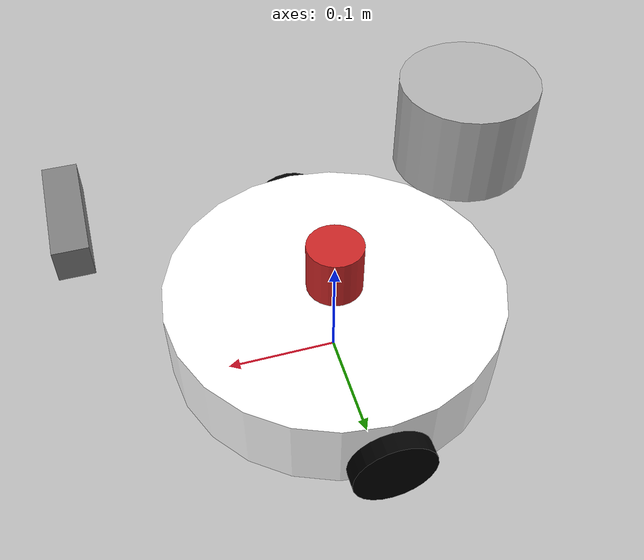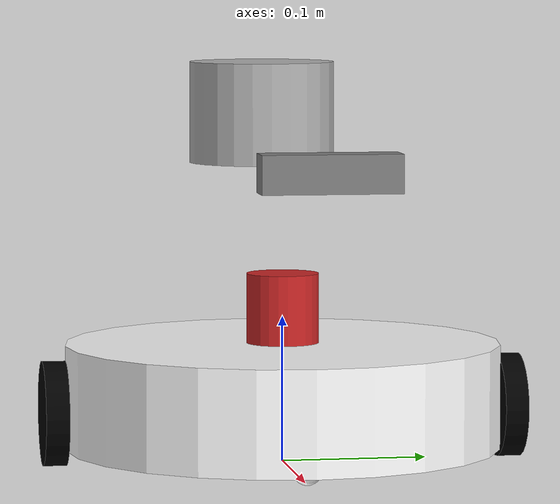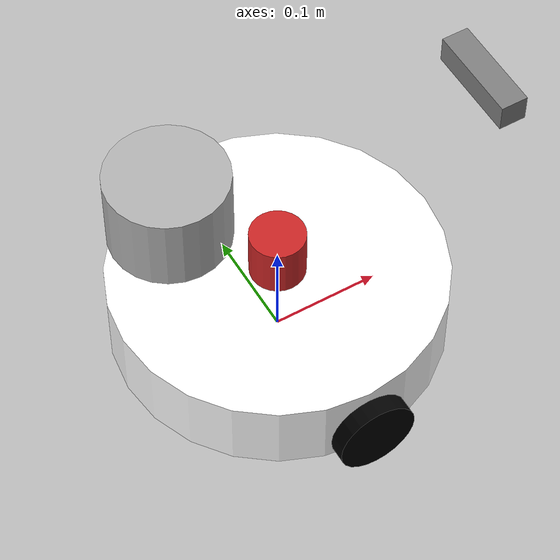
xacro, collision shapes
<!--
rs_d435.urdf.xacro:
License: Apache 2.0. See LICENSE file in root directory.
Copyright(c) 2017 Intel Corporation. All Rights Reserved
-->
<?xml version="1.0"?>
<robot xmlns:xacro="http://www.ros.org/wiki/xacro" name="example" >

    <!-- mobile base -->
    <xacro:include filename="$(find robot_simulator_template)/model/mobile_base/diff.xacro" />

    <!-- 2D LiDAR -->
    <xacro:include filename="$(find robot_simulator_template)/model/lidar/hokuyo.xacro" />
    <xacro:hokuyo parent="base_link" num="1" xyz="0.0 0 0.1" rpy="0 0 0" />

    <!-- 3D LiDAR -->
    <xacro:include filename="$(find robot_simulator_template)/model/lidar/velodyne.xacro" />
    <xacro:velodyne name="velodyne" parent="base_link" xyz="-0.1 0 0.2" rpy="0.0 0.0 0.0 " topic="/velodyne_points" hz="10" samples="440" collision_range="0.1" min_range="0.3" max_range="20.0" noise="0.008"/>

    <!-- imu -->
    <xacro:include filename="$(find robot_simulator_template)/model/imu/imu.xacro" />
    <xacro:imu_macro prefix="imu" parent="base_link" xyz="0.1 0 0.1" rpy="0.0 0.0 0.0" />

    <!-- camera -->
    <xacro:include filename="$(find robot_simulator_template)/model/camera/rs_d435.urdf.xacro" />
    <xacro:sensor_d435 parent="base_link" name="camera" topics_ns="camera">
      <origin xyz="0.2 0.0 0.2" rpy="0 0 0"/>
    </xacro:sensor_d435>

</robot>

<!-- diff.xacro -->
<robot name="diff">

    <link name="base_link"/>

    <link name="body_link">
      <visual>
        <geometry>
          <cylinder radius="0.15" length="0.072"/>
        </geometry>
        <origin xyz="0 0 0" rpy="0 0 0"/>
        <material name="white">
          <color rgba="1.0 1.0 1.0 1.0"/>
        </material>
      </visual>
      <collision>
        <geometry>
          <cylinder radius="0.15" length="0.072"/>
        </geometry>
        <origin xyz="0 0 0" rpy="0 0 0"/>
      </collision>
      <inertial>
          <origin xyz="0 0 0" rpy="0 0 0" />
          <mass value="3.0" />
          <inertia ixx="0.018171"
              ixy="0"  ixz="0"
              iyx="0"  iyy="0.018171"
              iyz="0"
              izx="0"  izy="0"  izz="0.03375" />
      </inertial>
    </link>

    <gazebo reference="body_link">
      <material>Gazebo/White</material>
    </gazebo>

    <link name="ball_link_front">
      <visual>
        <geometry>
          <sphere radius="0.01"/>
        </geometry>
        <origin xyz="0 0 0" rpy="0 0 0"/>
        <material name="white">
          <color rgba="1.0 1.0 1.0 1.0"/>
        </material>
      </visual>
      <collision>
        <geometry>
          <sphere radius="0.01"/>
        </geometry>
        <origin xyz="0 0 0" rpy="0 0 0"/>
      </collision>
      <inertial>
          <origin xyz="0 0 0" rpy="0 0 0" />
          <mass value="0.05" />
          <inertia ixx="0.000002"
              ixy="0"  ixz="0"
              iyx="0"  iyy="0.000002"
              iyz="0"
              izx="0"  izy="0"  izz="0.000002" />
      </inertial>
    </link>

    <gazebo reference="ball_link_front">
      <material>Gazebo/White</material>
      <mu1 value="0.1" />
      <mu2 value="0.1" />
    </gazebo>

    <link name="ball_link_back">
      <visual>
        <geometry>
          <sphere radius="0.01"/>
        </geometry>
        <origin xyz="0 0 0" rpy="0 0 0"/>
        <material name="white">
          <color rgba="1.0 1.0 1.0 1.0"/>
        </material>
      </visual>
      <collision>
        <geometry>
          <sphere radius="0.01"/>
        </geometry>
        <origin xyz="0 0 0" rpy="0 0 0"/>
      </collision>
      <inertial>
          <origin xyz="0 0 0" rpy="0 0 0" />
          <mass value="0.05" />
          <inertia ixx="0.000002"
              ixy="0"  ixz="0"
              iyx="0"  iyy="0.000002"
              iyz="0"
              izx="0"  izy="0"  izz="0.000002" />
      </inertial>
    </link>

    <gazebo reference="ball_link_back">
      <material>Gazebo/White</material>
      <mu1 value="0.1" />
      <mu2 value="0.1" />
    </gazebo>

    <link name="wheel_link_right">
      <visual>
        <geometry>
          <cylinder radius="0.036" length="0.016"/>
        </geometry>
        <origin xyz="0 0 0" rpy="0 0 0"/>
        <material name="black">
          <color rgba="0.0 0.0 0.0 1.0"/>
        </material>
      </visual>
      <collision>
        <geometry>
          <cylinder radius="0.036" length="0.016"/>
        </geometry>
        <origin xyz="0 0 0" rpy="0 0 0"/>
      </collision>
      <inertial>
          <origin xyz="0 0 0" rpy="0 0 0" />
          <mass value="0.1" />
          <inertia ixx="0.000034533333"
              ixy="0"  ixz="0"
              iyx="0"  iyy="0.000034533333"
              iyz="0"
              izx="0"  izy="0"  izz="0.0000648" />
      </inertial>
    </link>

    <gazebo reference="wheel_link_right">
      <material>Gazebo/Black</material>
      <mu1 value="1.0" />
      <mu2 value="1.0" />
    </gazebo>

    <link name="wheel_link_left">
      <visual>
        <geometry>
          <cylinder radius="0.036" length="0.016"/>
        </geometry>
        <origin xyz="0 0 0" rpy="0 0 0"/>
        <material name="black">
          <color rgba="0.0 0.0 0.0 1.0"/>
        </material>
      </visual>
      <collision>
        <geometry>
          <cylinder radius="0.036" length="0.016"/>
        </geometry>
        <origin xyz="0 0 0" rpy="0 0 0"/>
      </collision>
      <inertial>
          <origin xyz="0 0 0" rpy="0 0 0" />
          <mass value="0.1" />
          <inertia ixx="0.000034533333"
              ixy="0"  ixz="0"
              iyx="0"  iyy="0.000034533333"
              iyz="0"
              izx="0"  izy="0"  izz="0.0000648" />
      </inertial>
    </link>

    <gazebo reference="wheel_link_left">
      <material>Gazebo/Black</material>
      <mu1 value="1.0" />
      <mu2 value="1.0" />
    </gazebo>

    <joint name="body_joint" type="fixed">
      <parent link="base_link"/>
      <child  link="body_link"/>
      <origin xyz="0 0 0.046" rpy="0 0 0" />
    </joint>

    <joint name="ball_joint_front" type="fixed">
      <parent link="body_link"/>
      <child  link="ball_link_front"/>
      <origin xyz="0.11 0 -0.036" rpy="0 0 0" />
    </joint>

    <joint name="ball_joint_back" type="fixed">
      <parent link="body_link"/>
      <child  link="ball_link_back"/>
      <origin xyz="-0.11 0 -0.036" rpy="0 0 0" />
    </joint>

    <joint name="wheel_joint_right" type="continuous">
      <parent link="body_link"/>
      <child  link="wheel_link_right"/>
      <origin xyz="0 -0.158 -0.01" rpy="1.570796326794897 0 0" />
      <axis xyz="0 0 -1" />
      <limit effort="10" velocity="10" />
      <joint_properties damping="0.0" friction="0.0" />
    </joint>

    <joint name="wheel_joint_left" type="continuous">
      <parent link="body_link"/>
      <child  link="wheel_link_left"/>
      <origin xyz="0 0.158 -0.01" rpy="1.570796326794897 0 0" />
      <axis xyz="0 0 -1" />
      <limit effort="10" velocity="10" />
      <joint_properties damping="0.0" friction="0.0" />
    </joint>

    <gazebo>
      <plugin name="differential_drive_controller" filename="libgazebo_ros_diff_drive.so">

        <!-- Plugin update rate in Hz, defaults to 100 Hz -->
        <updateRate>30</updateRate>

        <!-- Name of left joint, defaults to `left_joint` -->
        <leftJoint>wheel_joint_left</leftJoint>

        <!-- Name of right joint, defaults to `right_joint` -->
        <rightJoint>wheel_joint_right</rightJoint>

        <!-- The distance from the center of one wheel to the other, in meters, defaults to 0.34 m -->
        <wheelSeparation>0.332</wheelSeparation>

        <!-- Diameter of the wheels, in meters, defaults to 0.15 m -->
        <wheelDiameter>0.072</wheelDiameter>

        <!-- Wheel acceleration, in rad/s^2, defaults to 0.0 rad/s^2 -->
        <wheelAcceleration>1.0</wheelAcceleration>

        <!-- Maximum torque which the wheels can produce, in Nm, defaults to 5 Nm -->
        <wheelTorque>10</wheelTorque>

        <!-- Topic to receive geometry_msgs/Twist message commands, defaults to `cmd_vel` -->
        <commandTopic>cmd_vel</commandTopic>

        <!-- Topic to publish nav_msgs/Odometry messages, defaults to `odom` -->
        <odometryTopic>odom</odometryTopic>

        <!-- Odometry frame, defaults to `odom` -->
        <odometryFrame>odom</odometryFrame>

        <!-- Robot frame to calculate odometry from, defaults to `base_footprint` -->
        <robotBaseFrame>base_link</robotBaseFrame>

        <!-- Odometry source, encoder or world, defaults to world -->
        <odometrySource>world</odometrySource>

        <!-- Set to 1 to create odom publisher, defaults to 1 -->
        <publishTf>1</publishTf>

        <!-- Set to true to publish transforms for the wheel links, defaults to false -->
        <publishWheelTF>false</publishWheelTF>

        <!-- Set to true to publish transforms for the odometry, defaults to true -->
        <publishOdomTF>true</publishOdomTF>

        <!-- Set to true to publish sensor_msgs/JointState on /joint_states for the wheel joints, defaults to false -->
        <publishWheelJointState>false</publishWheelJointState>

        <!-- Set to true to swap right and left wheels, defaults to true -->
        <legacyMode>false</legacyMode>

        <!-- DebugMode or not, na or Debug, defaults to na -->
        <rosDebugLevel>na</rosDebugLevel>
      </plugin>
    </gazebo>

  </robot>

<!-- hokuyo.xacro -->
<robot name="lrf" xmlns:xacro="http://ros.org/wiki/xacro">
  <!-- reference https://decwest.github.io/introduction-to-ros/gazebo/sensor/ -->
    <xacro:macro name="hokuyo" params="parent num xyz rpy">
      <joint name="${parent}_to_scan${num}" type="fixed">
        <parent link="${parent}"/>
        <child  link="scan${num}"/>
        <origin xyz="${xyz}" rpy="${rpy}"/>
      </joint>
      <link name="scan${num}">
        <visual>
          <origin xyz="0 0 0" rpy="0 0 0" />
          <geometry>
            <cylinder radius="0.025" length="0.06" />
          </geometry>
          <material name="red" />
        </visual>
        <collision>
          <origin xyz="0 0 0" rpy="0 0 0"/>
          <geometry>
            <cylinder radius="0.025" length="0.06" />
          </geometry>
        </collision>
      </link>
      <gazebo reference="scan${num}">
        <material>Gazebo/Red</material>
        <sensor type="ray" name="scan${num}">
          <pose>0 0 0 0 0 0</pose>
          <visualize>false</visualize>
          <update_rate>10</update_rate>
          <ray>
            <scan>
              <horizontal>
                <samples>400</samples>
                <resolution>1</resolution>
                <min_angle>${radians(-135)}</min_angle>
                <max_angle>${radians(135)}</max_angle>
              </horizontal>
            </scan>
            <range>
              <min>0.10</min>
              <max>20.0</max>
              <resolution>0.01</resolution>
            </range>
            <noise>
              <type>gaussian</type>
              <mean>0.0</mean>
              <stddev>0.01</stddev>
            </noise>
          </ray>
          <plugin name="gazebo_ros_lidar_controller" filename="libgazebo_ros_laser.so">
            <topicName>scan</topicName>
            <frameName>scan${num}</frameName>
          </plugin>
        </sensor>
      </gazebo>
    </xacro:macro>
  </robot>

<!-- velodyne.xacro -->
<robot name="velodyne" xmlns:xacro="http://ros.org/wiki/xacro">
  <xacro:arg name="gpu" default="false"/>
  <xacro:property name="gpu" value="$(arg gpu)" />
  <xacro:macro name="velodyne" params="parent name xyz rpy topic hz samples collision_range min_range max_range noise">
    <xacro:include filename="$(find velodyne_description)/urdf/VLP-16.urdf.xacro"/>
    <xacro:VLP-16 parent="${parent}" name="${name}" topic="${topic}" hz="${hz}" samples="${samples}" collision_range="${collision_range}"  min_range="${min_range}" max_range="${max_range}" noise="${noise}" gpu="${gpu}" organize_cloud="true">
        <origin xyz="${xyz}" rpy="${rpy}" />
    </xacro:VLP-16>
  </xacro:macro>
</robot>

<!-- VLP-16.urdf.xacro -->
<robot xmlns:xacro="http://www.ros.org/wiki/xacro" name="VLP-16">
  <xacro:property name="M_PI" value="3.1415926535897931" />
  <xacro:macro name="VLP-16" params="*origin is_sim:=true parent:=base_link name:=velodyne tf_prefix:='' topic:=/velodyne_points organize_cloud:=false hz:=10 lasers:=16 samples:=1875 collision_range:=0.3 min_range:=0.0 max_range:=100.0 noise:=0.008 min_angle:=-${M_PI} max_angle:=${M_PI} gpu:=false">

    <joint name="${name}_base_mount_joint" type="fixed">
      <xacro:insert_block name="origin" />
      <parent link="${parent}"/>
      <child link="${name}_base_link"/>
    </joint>

    <link name="${name}_base_link">
      <inertial>
        <mass value="0.83"/>
        <origin xyz="0 0 0.03585"/>
        <inertia ixx="${(0.83 * (3.0*0.0516*0.0516 + 0.0717*0.0717)) / 12.0}" ixy="0" ixz="0"
          iyy="${(0.83 * (3.0*0.0516*0.0516 + 0.0717*0.0717)) / 12.0}" iyz="0"
          izz="${0.5 * 0.83 * (0.0516*0.0516)}"/>
      </inertial>
      <visual>
        <geometry>
          <mesh filename="package://velodyne_description/meshes/VLP16_base_1.dae" />
        </geometry>
      </visual>
      <visual>
        <geometry>
          <mesh filename="package://velodyne_description/meshes/VLP16_base_2.dae" />
        </geometry>
      </visual>
      <collision>
        <origin rpy="0 0 0" xyz="0 0 0.03585"/>
        <geometry>
          <cylinder radius="0.0516" length="0.0717"/>
        </geometry>
      </collision>
    </link>

    <joint name="${name}_base_scan_joint" type="fixed" >
      <origin xyz="0 0 0.0377" rpy="0 0 0" />
      <parent link="${name}_base_link" />
      <child link="${name}"/>
    </joint>

    <link name="${name}">
      <inertial>
        <mass value="0.01"/>
        <origin xyz="0 0 0"/>
        <inertia ixx="1e-7" ixy="0" ixz="0" iyy="1e-7" iyz="0" izz="1e-7"/>
      </inertial>
      <visual>
        <origin xyz="0 0 -0.0377" />
        <geometry>
          <mesh filename="package://velodyne_description/meshes/VLP16_scan.dae" />
        </geometry>
      </visual>
      <collision>
        <geometry>
          <sphere radius="0"/>
        </geometry>
      </collision>
    </link>

    <!-- Gazebo requires the velodyne_gazebo_plugins package -->
    <xacro:if value="${is_sim}">
        <gazebo reference="${name}">
            <xacro:if value="${gpu}">
                <sensor type="gpu_ray" name="${name}-VLP16">
                <pose>0 0 0 0 0 0</pose>
                <visualize>false</visualize>
                <update_rate>${hz}</update_rate>
                <ray>
                    <scan>
                    <horizontal>
                        <samples>${samples}</samples>
                        <resolution>1</resolution>
                        <min_angle>${min_angle}</min_angle>
                        <max_angle>${max_angle}</max_angle>
                    </horizontal>
                    <vertical>
                        <samples>${lasers}</samples>
                        <resolution>1</resolution>
                        <min_angle>-${15.0*M_PI/180.0}</min_angle>
                        <max_angle> ${15.0*M_PI/180.0}</max_angle>
                    </vertical>
                    </scan>
                    <range>
                    <min>${collision_range}</min>
                    <max>${max_range+1}</max>
                    <resolution>0.001</resolution>
                    </range>
                    <noise>
                    <type>gaussian</type>
                    <mean>0.0</mean>
                    <stddev>0.0</stddev>
                    </noise>
                </ray>
                <plugin name="gazebo_ros_laser_controller" filename="libgazebo_ros_velodyne_laser.so">
                    <ros>
                    <namespace>/${name}</namespace>
                    <remapping>~/out:=${topic}</remapping>
                    </ros>
                    <tf_prefix>${tf_prefix}</tf_prefix>
                    <frame_name>${name}</frame_name>
                    <organize_cloud>${organize_cloud}</organize_cloud>
                    <min_range>${min_range}</min_range>
                    <max_range>${max_range}</max_range>
                    <gaussian_noise>${noise}</gaussian_noise>
                </plugin>
                </sensor>
            </xacro:if>
            <xacro:unless value="${gpu}">
                <sensor type="ray" name="${name}-VLP16">
                <pose>0 0 0 0 0 0</pose>
                <visualize>false</visualize>
                <update_rate>${hz}</update_rate>
                <ray>
                    <scan>
                    <horizontal>
                        <samples>${samples}</samples>
                        <resolution>1</resolution>
                        <min_angle>${min_angle}</min_angle>
                        <max_angle>${max_angle}</max_angle>
                    </horizontal>
                    <vertical>
                        <samples>${lasers}</samples>
                        <resolution>1</resolution>
                        <min_angle>-${15.0*M_PI/180.0}</min_angle>
                        <max_angle> ${15.0*M_PI/180.0}</max_angle>
                    </vertical>
                    </scan>
                    <range>
                    <min>${collision_range}</min>
                    <max>${max_range+1}</max>
                    <resolution>0.001</resolution>
                    </range>
                    <noise>
                    <type>gaussian</type>
                    <mean>0.0</mean>
                    <stddev>0.0</stddev>
                    </noise>
                </ray>
                <plugin name="gazebo_ros_laser_controller" filename="libgazebo_ros_velodyne_laser.so">
                    <ros>
                    <namespace>/${name}</namespace>
                    <remapping>~/out:=${topic}</remapping>
                    </ros>
                    <tf_prefix>${tf_prefix}</tf_prefix>
                    <frame_name>${name}</frame_name>
                    <organize_cloud>${organize_cloud}</organize_cloud>
                    <min_range>${min_range}</min_range>
                    <max_range>${max_range}</max_range>
                    <gaussian_noise>${noise}</gaussian_noise>
                </plugin>
                </sensor>
            </xacro:unless>
        </gazebo>
    </xacro:if>

  </xacro:macro>
</robot>

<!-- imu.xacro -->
<robot name="imu" xmlns:xacro="http://ros.org/wiki/xacro">
<xacro:macro name="imu_macro" params="parent prefix xyz rpy">
    <joint name="${parent}_to_${prefix}" type="fixed">
      <parent link="${parent}"/>
      <child  link="${prefix}_link"/>
      <origin xyz="${xyz}" rpy="${rpy}"/>
    </joint>
    <link name="${prefix}_link"/>
    <gazebo reference="${prefix}_link">
      <gravity>true</gravity>
      <sensor name="imu_sensor" type="imu">
        <always_on>true</always_on>
        <update_rate>100</update_rate>
        <visualize>true</visualize>
        <topic>data</topic>
        <plugin filename="libgazebo_ros_imu_sensor.so" name="imu_plugin">
          <topicName>${prefix}</topicName><!--${prefix}/data-->
          <bodyName>${prefix}_link</bodyName>
          <updateRateHZ>30.0</updateRateHZ>
          <gaussianNoise>0.0</gaussianNoise>
          <xyzOffset>0 0 0</xyzOffset>
          <rpyOffset>0 0 0</rpyOffset>
          <frameName>${prefix}_link</frameName>
        </plugin>
        <pose>0 0 0 0 0 0</pose>
      </sensor>
    </gazebo>
  </xacro:macro>
</robot>

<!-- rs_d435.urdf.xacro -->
<robot name="sensor_d435" xmlns:xacro="http://www.ros.org/wiki/xacro">
  <!--File includes-->
  <xacro:include filename="$(find robot_simulator_template)/model/camera/rs_d435.gazebo.xacro"/>

  <xacro:macro name="sensor_d435" params="name topics_ns parent *origin">
    <xacro:property name="M_PI" value="3.1415926535897931" />

    <!-- The following values are approximate, and the camera node
     publishing TF values with actual calibrated camera extrinsic values -->
    <xacro:property name="d435_cam_depth_to_left_ir_offset" value="0.0"/>
    <xacro:property name="d435_cam_depth_to_right_ir_offset" value="-0.050"/>
    <xacro:property name="d435_cam_depth_to_color_offset" value="0.015"/>

    <!-- The following values model the aluminum peripherial case for the
  	D435 camera, with the camera joint represented by the actual
  	peripherial camera tripod mount -->
    <xacro:property name="d435_cam_width" value="0.090"/>
    <xacro:property name="d435_cam_height" value="0.025"/>
    <xacro:property name="d435_cam_depth" value="0.02505"/>
    <xacro:property name="d435_cam_mount_from_center_offset" value="0.0149"/>

    <!-- The following offset is relative the the physical D435 camera peripherial
  	camera tripod mount -->
    <xacro:property name="d435_cam_depth_px" value="${d435_cam_mount_from_center_offset}"/>
    <xacro:property name="d435_cam_depth_py" value="0.0175"/>
    <xacro:property name="d435_cam_depth_pz" value="${d435_cam_height/2}"/>

    <material name="${name}_aluminum">
	  <color rgba="0.5 0.5 0.5 1"/>
    </material>

    <!-- camera body, with origin at bottom screw mount -->
    <joint name="${name}_joint" type="fixed">
      <xacro:insert_block name="origin" />
      <parent link="${parent}"/>
      <child link="${name}_bottom_screw_frame" />
    </joint>
    <link name="${name}_bottom_screw_frame"/>

    <joint name="${name}_link_joint" type="fixed">
      <origin xyz="0 ${d435_cam_depth_py} ${d435_cam_depth_pz}" rpy="0 0 0"/>
      <parent link="${name}_bottom_screw_frame"/>
      <child link="${name}_link" />
    </joint>

    <link name="${name}_link">
      <visual>
      <origin xyz="${d435_cam_mount_from_center_offset} ${-d435_cam_depth_py} 0" rpy="${M_PI/2} 0 ${M_PI/2}"/>
        <geometry>
          <mesh filename="package://realsense2_description/meshes/d435.dae" />
        </geometry>
        <material name="${name}_aluminum"/>
      </visual>
      <collision>
        <origin xyz="0 ${-d435_cam_depth_py} 0" rpy="0 0 0"/>
        <geometry>
        <box size="${d435_cam_depth} ${d435_cam_width} ${d435_cam_height}"/>
        </geometry>
      </collision>
      <inertial>
        <!-- The following are not reliable values, and should not be used for modeling -->
        <mass value="0.564" />
        <origin xyz="0 0 0" />
        <inertia ixx="0.003881243" ixy="0.0" ixz="0.0" iyy="0.000498940" iyz="0.0" izz="0.003879257" />
      </inertial>
    </link>

    <!-- camera depth joints and links -->
    <joint name="${name}_depth_joint" type="fixed">
      <origin xyz="0 0 0" rpy="0 0 0"/>
      <parent link="${name}_link"/>
      <child link="${name}_depth_frame" />
    </joint>
    <link name="${name}_depth_frame"/>

    <joint name="${name}_depth_optical_joint" type="fixed">
      <origin xyz="0 0 0" rpy="${-M_PI/2} 0 ${-M_PI/2}" />
      <parent link="${name}_depth_frame" />
      <child link="${name}_depth_optical_frame" />
    </joint>
    <link name="${name}_depth_optical_frame"/>

    <!-- camera left IR joints and links -->
    <joint name="${name}_left_ir_joint" type="fixed">
      <origin xyz="0 ${d435_cam_depth_to_left_ir_offset} 0" rpy="0 0 0" />
      <parent link="${name}_depth_frame" />
      <child link="${name}_left_ir_frame" />
    </joint>
    <link name="${name}_left_ir_frame"/>

    <joint name="${name}_left_ir_optical_joint" type="fixed">
      <origin xyz="0 0 0" rpy="${-M_PI/2} 0 ${-M_PI/2}" />
      <parent link="${name}_left_ir_frame" />
      <child link="${name}_left_ir_optical_frame" />
    </joint>
    <link name="${name}_left_ir_optical_frame"/>

    <!-- camera right IR joints and links -->
    <joint name="${name}_right_ir_joint" type="fixed">
      <origin xyz="0 ${d435_cam_depth_to_right_ir_offset} 0" rpy="0 0 0" />
      <parent link="${name}_depth_frame" />
      <child link="${name}_right_ir_frame" />
    </joint>
    <link name="${name}_right_ir_frame"/>

    <joint name="${name}_right_ir_optical_joint" type="fixed">
      <origin xyz="0 0 0" rpy="${-M_PI/2} 0 ${-M_PI/2}" />
      <parent link="${name}_right_ir_frame" />
      <child link="${name}_right_ir_optical_frame" />
    </joint>
    <link name="${name}_right_ir_optical_frame"/>

    <!-- camera color joints and links -->
    <joint name="${name}_color_joint" type="fixed">
      <origin xyz="0 ${d435_cam_depth_to_color_offset} 0" rpy="0 0 0" />
      <parent link="${name}_depth_frame" />
      <child link="${name}_color_frame" />
    </joint>
    <link name="${name}_color_frame"/>

    <joint name="${name}_color_optical_joint" type="fixed">
      <origin xyz="0 0 0" rpy="${-M_PI/2} 0 ${-M_PI/2}" />
      <parent link="${name}_color_frame" />
      <child link="${name}_color_optical_frame" />
    </joint>
    <link name="${name}_color_optical_frame"/>

    <!-- Realsense Gazebo Plugin -->
    <xacro:gazebo_d435 camera_name="${name}" reference_link="${name}_link" topics_ns="${topics_ns}" depth_optical_frame="${name}_depth_optical_frame" color_optical_frame="${name}_color_optical_frame" infrared1_optical_frame="${name}_left_ir_optical_frame" infrared2_optical_frame="${name}_right_ir_optical_frame"/>

  </xacro:macro>
</robot>
